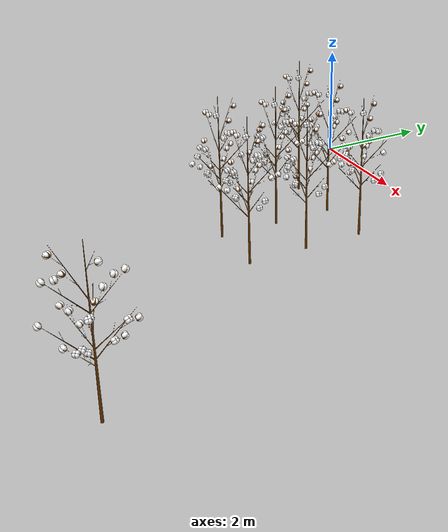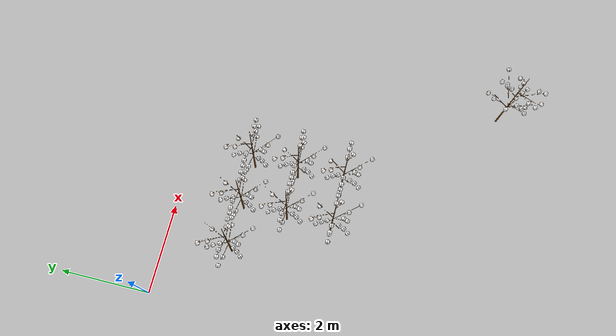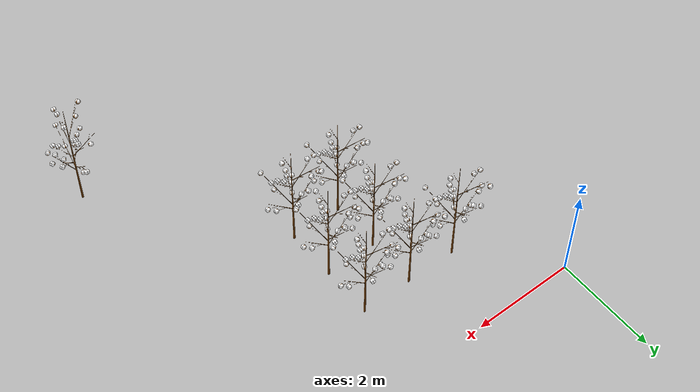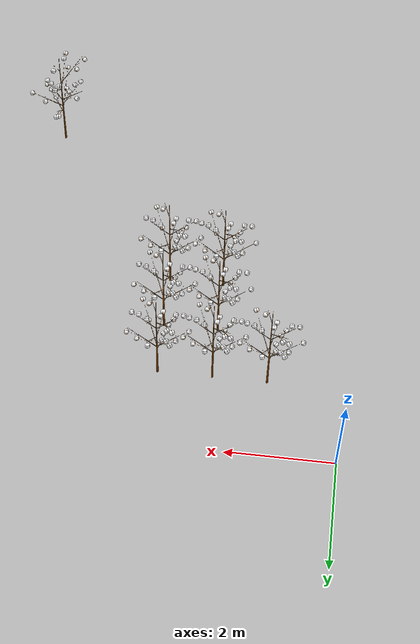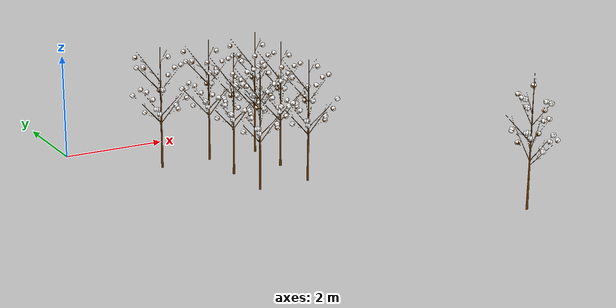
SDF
<sdf version="1.6">
 <world name="default">
  <model name="cotton_clone_7">
   <link name="link">
    <collision name="collision">
     <geometry><mesh><scale>1 1 1</scale><uri>model://cotton/meshes/cotton.dae</uri></mesh></geometry>
    </collision>
    <inertial>
     <mass>1</mass>
     <inertia>
      <ixx>0.166667</ixx>
      <ixy>0</ixy>
      <ixz>0</ixz>
      <iyy>0.166667</iyy>
      <iyz>0</iyz>
      <izz>0.166667</izz>
     </inertia>
    </inertial>
    <visual name="visual">
     <geometry><mesh><scale>1 1 1</scale><uri>model://cotton/meshes/cotton.dae</uri></mesh></geometry>
    </visual>
    <velocity_decay><linear>0</linear><angular>0</angular></velocity_decay>
    <gravity>0</gravity>
   </link>
   <pose>5.816557 -3.254582 0 0 -0 0</pose>
   <static>1</static>
  </model>
  <model name="cotton_clone_8">
   <link name="link">
    <collision name="collision">
     <geometry><mesh><scale>1 1 1</scale><uri>model://cotton/meshes/cotton.dae</uri></mesh></geometry>
    </collision>
    <inertial>
     <mass>1</mass>
     <inertia>
      <ixx>0.166667</ixx>
      <ixy>0</ixy>
      <ixz>0</ixz>
      <iyy>0.166667</iyy>
      <iyz>0</iyz>
      <izz>0.166667</izz>
     </inertia>
    </inertial>
    <visual name="visual">
     <geometry><mesh><scale>1 1 1</scale><uri>model://cotton/meshes/cotton.dae</uri></mesh></geometry>
    </visual>
    <velocity_decay><linear>0</linear><angular>0</angular></velocity_decay>
    <gravity>0</gravity>
   </link>
   <pose>5.816557 -4.254582 0 0 -0 0</pose>
   <static>1</static>
  </model>
  <model name="cotton_clone_9">
   <link name="link">
    <collision name="collision">
     <geometry><mesh><scale>1 1 1</scale><uri>model://cotton/meshes/cotton.dae</uri></mesh></geometry>
    </collision>
    <inertial>
     <mass>1</mass>
     <inertia>
      <ixx>0.166667</ixx>
      <ixy>0</ixy>
      <ixz>0</ixz>
      <iyy>0.166667</iyy>
      <iyz>0</iyz>
      <izz>0.166667</izz>
     </inertia>
    </inertial>
    <visual name="visual">
     <geometry><mesh><scale>1 1 1</scale><uri>model://cotton/meshes/cotton.dae</uri></mesh></geometry>
    </visual>
    <velocity_decay><linear>0</linear><angular>0</angular></velocity_decay>
    <gravity>0</gravity>
   </link>
   <pose>6.816557 -3.254582 0 0 -0 1.5</pose>
   <static>1</static>
  </model>
  <model name="cotton_clone_10">
   <link name="link">
    <collision name="collision">
     <geometry><mesh><scale>1 1 1</scale><uri>model://cotton/meshes/cotton.dae</uri></mesh></geometry>
    </collision>
    <inertial>
     <mass>1</mass>
     <inertia>
      <ixx>0.166667</ixx>
      <ixy>0</ixy>
      <ixz>0</ixz>
      <iyy>0.166667</iyy>
      <iyz>0</iyz>
      <izz>0.166667</izz>
     </inertia>
    </inertial>
    <visual name="visual">
     <geometry><mesh><scale>1 1 1</scale><uri>model://cotton/meshes/cotton.dae</uri></mesh></geometry>
    </visual>
    <velocity_decay><linear>0</linear><angular>0</angular></velocity_decay>
    <gravity>0</gravity>
   </link>
   <pose>6.816557 -4.254582 0 0 -0 0</pose>
   <static>1</static>
  </model>
  <model name="cotton_clone_23">
   <link name="link">
    <collision name="collision">
     <geometry><mesh><scale>1 1 1</scale><uri>model://cotton/meshes/cotton.dae</uri></mesh></geometry>
    </collision>
    <inertial>
     <mass>1</mass>
     <inertia>
      <ixx>0.166667</ixx>
      <ixy>0</ixy>
      <ixz>0</ixz>
      <iyy>0.166667</iyy>
      <iyz>0</iyz>
      <izz>0.166667</izz>
     </inertia>
    </inertial>
    <visual name="visual">
     <geometry><mesh><scale>1 1 1</scale><uri>model://cotton/meshes/cotton.dae</uri></mesh></geometry>
    </visual>
    <velocity_decay><linear>0</linear><angular>0</angular></velocity_decay>
    <gravity>0</gravity>
   </link>
   <pose>4.816557 -2.254582 0 0 -0 0</pose>
   <static>1</static>
  </model>
  <model name="cotton_clone_24">
   <link name="link">
    <collision name="collision">
     <geometry><mesh><scale>1 1 1</scale><uri>model://cotton/meshes/cotton.dae</uri></mesh></geometry>
    </collision>
    <inertial>
     <mass>1</mass>
     <inertia>
      <ixx>0.166667</ixx>
      <ixy>0</ixy>
      <ixz>0</ixz>
      <iyy>0.166667</iyy>
      <iyz>0</iyz>
      <izz>0.166667</izz>
     </inertia>
    </inertial>
    <visual name="visual">
     <geometry><mesh><scale>1 1 1</scale><uri>model://cotton/meshes/cotton.dae</uri></mesh></geometry>
    </visual>
    <velocity_decay><linear>0</linear><angular>0</angular></velocity_decay>
    <gravity>0</gravity>
   </link>
   <pose>5.816557 -3.254582 0 0 -0 0</pose>
   <static>1</static>
  </model>
  <model name="cotton_clone_25">
   <link name="link">
    <collision name="collision">
     <geometry><mesh><scale>1 1 1</scale><uri>model://cotton/meshes/cotton.dae</uri></mesh></geometry>
    </collision>
    <inertial>
     <mass>1</mass>
     <inertia>
      <ixx>0.166667</ixx>
      <ixy>0</ixy>
      <ixz>0</ixz>
      <iyy>0.166667</iyy>
      <iyz>0</iyz>
      <izz>0.166667</izz>
     </inertia>
    </inertial>
    <visual name="visual">
     <geometry><mesh><scale>1 1 1</scale><uri>model://cotton/meshes/cotton.dae</uri></mesh></geometry>
    </visual>
    <velocity_decay><linear>0</linear><angular>0</angular></velocity_decay>
    <gravity>0</gravity>
   </link>
   <pose>5.816557 -2.254582 0 0 -0 0</pose>
   <static>1</static>
  </model>
  <model name="cotton_clone_26">
   <link name="link">
    <collision name="collision">
     <geometry><mesh><scale>1 1 1</scale><uri>model://cotton/meshes/cotton.dae</uri></mesh></geometry>
    </collision>
    <inertial>
     <mass>1</mass>
     <inertia>
      <ixx>0.166667</ixx>
      <ixy>0</ixy>
      <ixz>0</ixz>
      <iyy>0.166667</iyy>
      <iyz>0</iyz>
      <izz>0.166667</izz>
     </inertia>
    </inertial>
    <visual name="visual">
     <geometry><mesh><scale>1 1 1</scale><uri>model://cotton/meshes/cotton.dae</uri></mesh></geometry>
    </visual>
    <velocity_decay><linear>0</linear><angular>0</angular></velocity_decay>
    <gravity>0</gravity>
   </link>
   <pose>6.816557 -3.254582 0 0 -0 0</pose>
   <static>1</static>
  </model>
  <model name="cotton_clone_27">
   <link name="link">
    <collision name="collision">
     <geometry><mesh><scale>1 1 1</scale><uri>model://cotton/meshes/cotton.dae</uri></mesh></geometry>
    </collision>
    <inertial>
     <mass>1</mass>
     <inertia>
      <ixx>0.166667</ixx>
      <ixy>0</ixy>
      <ixz>0</ixz>
      <iyy>0.166667</iyy>
      <iyz>0</iyz>
      <izz>0.166667</izz>
     </inertia>
    </inertial>
    <visual name="visual">
     <geometry><mesh><scale>1 1 1</scale><uri>model://cotton/meshes/cotton.dae</uri></mesh></geometry>
    </visual>
    <velocity_decay><linear>0</linear><angular>0</angular></velocity_decay>
    <gravity>0</gravity>
   </link>
   <pose>6.816557 -2.254582 0 0 -0 0</pose>
   <static>1</static>
  </model>
 </world>
</sdf>
